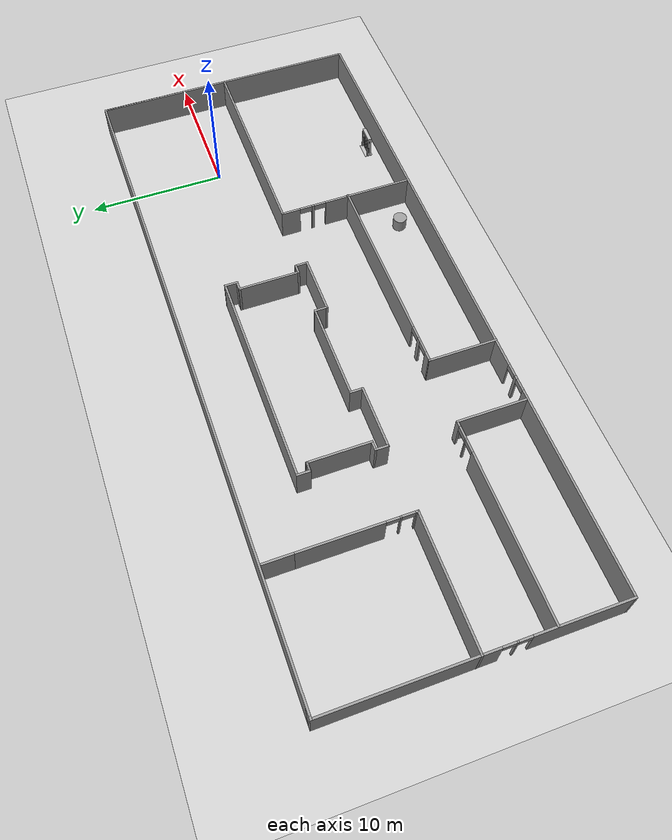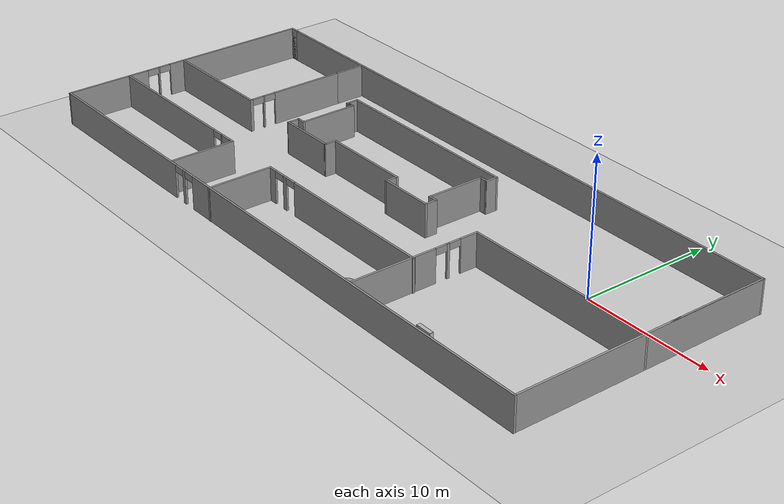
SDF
<sdf version="1.6">
 <world name="default">
  <model name="ground_plane">
   <static>1</static>
   <link name="link">
    <collision name="collision">
     <geometry><plane><normal>0 0 1</normal><size>100 100</size></plane></geometry>
     <surface><friction><ode><mu>100</mu><mu2>50</mu2></ode></friction></surface>
    </collision>
    <visual name="visual">
     <cast_shadows>0</cast_shadows>
     <geometry><plane><normal>0 0 1</normal><size>100 100</size></plane></geometry>
     <material>
      <script><uri>file://media/materials/scripts/gazebo.material</uri><name>Gazebo/Grey</name></script>
     </material>
    </visual>
   </link>
  </model>
  <model name="unit_cylinder_0">
   <pose>-9.3103 -11.4696 0.499993 -3e-06 0 0</pose>
   <link name="link">
    <inertial>
     <mass>1</mass>
     <inertia><ixx>0.145833</ixx><ixy>0</ixy><ixz>0</ixz><iyy>0.145833</iyy><iyz>0</iyz><izz>0.125</izz></inertia>
    </inertial>
    <collision name="collision">
     <geometry><cylinder><radius>0.5</radius><length>1</length></cylinder></geometry>
    </collision>
    <visual name="visual">
     <geometry><cylinder><radius>0.5</radius><length>1</length></cylinder></geometry>
     <material>
      <script><name>Gazebo/Grey</name><uri>file://media/materials/scripts/gazebo.material</uri></script>
     </material>
    </visual>
   </link>
  </model>
  <model name="frc2016_portcullis_0">
   <link name="base">
    <inertial>
     <mass>50</mass>
     <pose>0 0 1.02941 0 -0 0</pose>
     <inertia><ixx>3.81711</ixx><ixy>0</ixy><ixz>0</ixz><iyy>4.87698</iyy><iyz>0</iyz><izz>1.6283</izz></inertia>
    </inertial>
    <visual name="platform">
     <pose>0 0 0.07284 0 -0 0</pose>
     <geometry><box><size>1.27 0.5842 0.003175</size></box></geometry>
    </visual>
    <collision name="platform">
     <pose>0 0 0.07284 0 -0 0</pose>
     <geometry><box><size>1.27 0.5842 0.003175</size></box></geometry>
    </collision>
    <visual name="left_column">
     <pose>0.59284 0 0.99042 0 -0 0</pose>
     <geometry><box><size>0.08375 0.28575 1.83198</size></box></geometry>
    </visual>
    <collision name="left_column">
     <pose>0.59284 0 0.99042 0 -0 0</pose>
     <geometry><box><size>0.08375 0.28575 1.83198</size></box></geometry>
    </collision>
    <visual name="right_column">
     <pose>-0.57759 0 0.99042 0 -0 0</pose>
     <geometry><box><size>0.08375 0.28575 1.83198</size></box></geometry>
    </visual>
    <collision name="right_column">
     <pose>-0.57759 0 0.99042 0 -0 0</pose>
     <geometry><box><size>0.08375 0.28575 1.83198</size></box></geometry>
    </collision>
    <visual name="top">
     <pose>-0.00034 0 1.77722 0 -0 0</pose>
     <geometry><box><size>1.22962 0.28575 0.26657</size></box></geometry>
    </visual>
    <collision name="top">
     <pose>-0.00034 0 1.77722 0 -0 0</pose>
     <geometry><box><size>1.22962 0.28575 0.26657</size></box></geometry>
    </collision>
    <visual name="castor1">
     <pose>-0.45651 -0.16234 0.03272 0 -0 0</pose>
     <geometry><sphere><radius>0.03272</radius></sphere></geometry>
    </visual>
    <collision name="castor1">
     <pose>-0.45651 -0.16234 0.03272 0 -0 0</pose>
     <geometry><sphere><radius>0.03272</radius></sphere></geometry>
    </collision>
    <visual name="castor2">
     <pose>-0.27883 0.21836 0.03272 0 -0 0</pose>
     <geometry><sphere><radius>0.03272</radius></sphere></geometry>
    </visual>
    <collision name="castor2">
     <pose>-0.27883 0.21836 0.03272 0 -0 0</pose>
     <geometry><sphere><radius>0.03272</radius></sphere></geometry>
    </collision>
    <visual name="castor3">
     <pose>0.28083 0.21906 0.03272 0 -0 0</pose>
     <geometry><sphere><radius>0.03272</radius></sphere></geometry>
    </visual>
    <collision name="castor3">
     <pose>0.28083 0.21906 0.03272 0 -0 0</pose>
     <geometry><sphere><radius>0.03272</radius></sphere></geometry>
    </collision>
    <visual name="castor4">
     <pose>0.45871 -0.16186 0.03272 0 -0 0</pose>
     <geometry><sphere><radius>0.03272</radius></sphere></geometry>
    </visual>
    <collision name="castor4">
     <pose>0.45871 -0.16186 0.03272 0 -0 0</pose>
     <geometry><sphere><radius>0.03272</radius></sphere></geometry>
    </collision>
   </link>
   <link name="gate">
    <pose>-0.0287 0.02885 0.93327 0 -0 0</pose>
    <inertial>
     <mass>2</mass>
     <inertia><ixx>3.81711</ixx><ixy>0</ixy><ixz>0</ixz><iyy>4.87698</iyy><iyz>0</iyz><izz>1.6283</izz></inertia>
    </inertial>
    <collision name="collision"><geometry><box><size>1.1938 0.02496 1.45732</size></box></geometry></collision>
    <visual name="horz_1">
     <pose>0 0 -0.70326 0 -0 0</pose>
     <geometry><box><size>1.1938 0.02496 0.0508</size></box></geometry>
     <material><ambient>0.4 0.4 0.4 1</ambient><diffuse>0.4 0.4 0.4 1</diffuse></material>
    </visual>
    <visual name="horz_2">
     <pose>0 0 -0.44926 0 -0 0</pose>
     <geometry><box><size>1.1938 0.02496 0.0508</size></box></geometry>
     <material><ambient>0.4 0.4 0.4 1</ambient><diffuse>0.4 0.4 0.4 1</diffuse></material>
    </visual>
    <visual name="horz_3">
     <pose>0 0 -0.14517 0 -0 0</pose>
     <geometry><box><size>1.1938 0.02496 0.0508</size></box></geometry>
     <material><ambient>0.4 0.4 0.4 1</ambient><diffuse>0.4 0.4 0.4 1</diffuse></material>
    </visual>
    <visual name="horz_4">
     <pose>0 0 0.16034 0 -0 0</pose>
     <geometry><box><size>1.1938 0.02496 0.0508</size></box></geometry>
     <material><ambient>0.4 0.4 0.4 1</ambient><diffuse>0.4 0.4 0.4 1</diffuse></material>
    </visual>
    <visual name="horz_5">
     <pose>0 0 0.46514 0 -0 0</pose>
     <geometry><box><size>1.1938 0.02496 0.0508</size></box></geometry>
     <material><ambient>0.4 0.4 0.4 1</ambient><diffuse>0.4 0.4 0.4 1</diffuse></material>
    </visual>
    <visual name="horz_6">
     <pose>0 0 0.72994 0 -0 0</pose>
     <geometry><box><size>1.1938 0.02496 0.0508</size></box></geometry>
     <material><ambient>0.4 0.4 0.4 1</ambient><diffuse>0.4 0.4 0.4 1</diffuse></material>
    </visual>
    <visual name="vert_1">
     <pose>-0.58448 0 0 0 -0 0</pose>
     <geometry><box><size>0.02495 0.02496 1.45732</size></box></geometry>
     <material><ambient>0.4 0.4 0.4 1</ambient><diffuse>0.4 0.4 0.4 1</diffuse></material>
    </visual>
    <visual name="vert_2">
     <pose>-0.38128 0 0 0 -0 0</pose>
     <geometry><box><size>0.0508 0.02496 1.45732</size></box></geometry>
     <material><ambient>0.4 0.4 0.4 1</ambient><diffuse>0.4 0.4 0.4 1</diffuse></material>
    </visual>
    <visual name="vert_3">
     <pose>-0.12728 0 0 0 -0 0</pose>
     <geometry><box><size>0.0508 0.02496 1.45732</size></box></geometry>
     <material><ambient>0.4 0.4 0.4 1</ambient><diffuse>0.4 0.4 0.4 1</diffuse></material>
    </visual>
    <visual name="vert_4">
     <pose>0.12672 0 0 0 -0 0</pose>
     <geometry><box><size>0.0508 0.02496 1.45732</size></box></geometry>
     <material><ambient>0.4 0.4 0.4 1</ambient><diffuse>0.4 0.4 0.4 1</diffuse></material>
    </visual>
    <visual name="vert_5">
     <pose>0.38072 0 0 0 -0 0</pose>
     <geometry><box><size>0.0508 0.02496 1.45732</size></box></geometry>
     <material><ambient>0.4 0.4 0.4 1</ambient><diffuse>0.4 0.4 0.4 1</diffuse></material>
    </visual>
    <visual name="vert_6">
     <pose>0.58392 0 0 0 -0 0</pose>
     <geometry><box><size>0.02495 0.02496 1.45732</size></box></geometry>
     <material><ambient>0.4 0.4 0.4 1</ambient><diffuse>0.4 0.4 0.4 1</diffuse></material>
    </visual>
   </link>
   <joint name="joint" type="prismatic">
    <parent>base</parent>
    <child>gate</child>
    <axis>
     <xyz>0 0 1</xyz>
     <limit><lower>0</lower><upper>1</upper></limit>
     <use_parent_model_frame>0</use_parent_model_frame>
     <dynamics><spring_reference>0</spring_reference><spring_stiffness>0</spring_stiffness></dynamics>
    </axis>
   </joint>
   <pose>-1.19782 -11.9336 1e-06 4e-06 -2e-06 -0.01745</pose>
  </model>
  <model name="build1_3">
   <pose>-16.7865 -2.96586 0 0 -0 0</pose>
   <link name="Wall_0">
    <collision name="Wall_0_Collision">
     <geometry><box><size>48.75 0.15 2.5</size></box></geometry>
     <pose>0 0 1.25 0 -0 0</pose>
    </collision>
    <visual name="Wall_0_Visual">
     <pose>0 0 1.25 0 -0 0</pose>
     <geometry><box><size>48.75 0.15 2.5</size></box></geometry>
     <material>
      <script><uri>file://media/materials/scripts/gazebo.material</uri><name>Gazebo/Grey</name></script>
      <ambient>1 1 1 1</ambient>
     </material>
    </visual>
    <pose>0.128151 9.93761 0 0 -0 0</pose>
   </link>
   <link name="Wall_10">
    <collision name="Wall_10_Collision">
     <geometry><box><size>0.75 0.15 2.5</size></box></geometry>
     <pose>0 0 1.25 0 -0 0</pose>
    </collision>
    <visual name="Wall_10_Visual">
     <pose>0 0 1.25 0 -0 0</pose>
     <geometry><box><size>0.75 0.15 2.5</size></box></geometry>
     <material>
      <script><uri>file://media/materials/scripts/gazebo.material</uri><name>Gazebo/Grey</name></script>
      <ambient>1 1 1 1</ambient>
     </material>
    </visual>
    <pose>-24.1218 9.93761 0 0 -0 0</pose>
   </link>
   <link name="Wall_101">
    <collision name="Wall_101_Collision">
     <geometry><box><size>10 0.15 2.5</size></box></geometry>
     <pose>0 0 1.25 0 -0 0</pose>
    </collision>
    <visual name="Wall_101_Visual">
     <pose>0 0 1.25 0 -0 0</pose>
     <geometry><box><size>10 0.15 2.5</size></box></geometry>
     <material>
      <script><uri>file://media/materials/scripts/gazebo.material</uri><name>Gazebo/Grey</name></script>
      <ambient>1 1 1 1</ambient>
     </material>
    </visual>
    <pose>24.4281 5.01261 0 0 0 -1.5708</pose>
   </link>
   <link name="Wall_102">
    <collision name="Wall_102_Collision">
     <geometry><box><size>15 0.15 2.5</size></box></geometry>
     <pose>0 0 1.25 0 -0 0</pose>
    </collision>
    <visual name="Wall_102_Visual">
     <pose>0 0 1.25 0 -0 0</pose>
     <geometry><box><size>15 0.15 2.5</size></box></geometry>
     <material>
      <script><uri>file://media/materials/scripts/gazebo.material</uri><name>Gazebo/Grey</name></script>
      <ambient>1 1 1 1</ambient>
     </material>
    </visual>
    <pose>17.0032 0.087612 0 0 -0 3.14159</pose>
   </link>
   <link name="Wall_103">
    <pose>9.57815 -2.46239 0 0 0 -1.5708</pose>
    <visual name="Wall_103_Visual_0">
     <pose>-1.90662 0 1.25 0 -0 0</pose>
     <geometry><box><size>1.43676 0.15 2.5</size></box></geometry>
     <material>
      <script><uri>file://media/materials/scripts/gazebo.material</uri><name>Gazebo/Grey</name></script>
      <ambient>1 1 1 1</ambient>
     </material>
    </visual>
    <collision name="Wall_103_Collision_0">
     <geometry><box><size>1.43676 0.15 2.5</size></box></geometry>
     <pose>-1.90662 0 1.25 0 -0 0</pose>
    </collision>
    <visual name="Wall_103_Visual_1">
     <pose>-0.188989 0 1.25 0 -0 0</pose>
     <geometry><box><size>0.198503 0.15 2.5</size></box></geometry>
     <material>
      <script><uri>file://media/materials/scripts/gazebo.material</uri><name>Gazebo/Grey</name></script>
      <ambient>1 1 1 1</ambient>
     </material>
    </visual>
    <collision name="Wall_103_Collision_1">
     <geometry><box><size>0.198503 0.15 2.5</size></box></geometry>
     <pose>-0.188989 0 1.25 0 -0 0</pose>
    </collision>
    <visual name="Wall_103_Visual_2">
     <pose>1.71763 0 1.25 0 -0 0</pose>
     <geometry><box><size>1.81474 0.15 2.5</size></box></geometry>
     <material>
      <script><uri>file://media/materials/scripts/gazebo.material</uri><name>Gazebo/Grey</name></script>
      <ambient>1 1 1 1</ambient>
     </material>
    </visual>
    <collision name="Wall_103_Collision_2">
     <geometry><box><size>1.81474 0.15 2.5</size></box></geometry>
     <pose>1.71763 0 1.25 0 -0 0</pose>
    </collision>
    <visual name="Wall_103_Visual_3">
     <pose>-0.73824 0 2.25 0 -0 0</pose>
     <geometry><box><size>0.9 0.15 0.5</size></box></geometry>
     <material>
      <script><uri>file://media/materials/scripts/gazebo.material</uri><name>Gazebo/Grey</name></script>
      <ambient>1 1 1 1</ambient>
     </material>
    </visual>
    <collision name="Wall_103_Collision_3">
     <geometry><box><size>0.9 0.15 0.5</size></box></geometry>
     <pose>-0.73824 0 2.25 0 -0 0</pose>
    </collision>
    <visual name="Wall_103_Visual_4">
     <pose>0.360263 0 2.25 0 -0 0</pose>
     <geometry><box><size>0.9 0.15 0.5</size></box></geometry>
     <material>
      <script><uri>file://media/materials/scripts/gazebo.material</uri><name>Gazebo/Grey</name></script>
      <ambient>1 1 1 1</ambient>
     </material>
    </visual>
    <collision name="Wall_103_Collision_4">
     <geometry><box><size>0.9 0.15 0.5</size></box></geometry>
     <pose>0.360263 0 2.25 0 -0 0</pose>
    </collision>
   </link>
   <link name="Wall_105">
    <pose>1.96209 -5.08761 0 0 -0 0</pose>
    <visual name="Wall_105_Visual_0">
     <pose>-7.37124 0 1.25 0 -0 0</pose>
     <geometry><box><size>0.757518 0.15 2.5</size></box></geometry>
     <material>
      <script><uri>file://media/materials/scripts/gazebo.material</uri><name>Gazebo/Grey</name></script>
      <ambient>1 1 1 1</ambient>
     </material>
    </visual>
    <collision name="Wall_105_Collision_0">
     <geometry><box><size>0.757518 0.15 2.5</size></box></geometry>
     <pose>-7.37124 0 1.25 0 -0 0</pose>
    </collision>
    <visual name="Wall_105_Visual_1">
     <pose>-5.91186 0 1.25 0 -0 0</pose>
     <geometry><box><size>0.361245 0.15 2.5</size></box></geometry>
     <material>
      <script><uri>file://media/materials/scripts/gazebo.material</uri><name>Gazebo/Grey</name></script>
      <ambient>1 1 1 1</ambient>
     </material>
    </visual>
    <collision name="Wall_105_Collision_1">
     <geometry><box><size>0.361245 0.15 2.5</size></box></geometry>
     <pose>-5.91186 0 1.25 0 -0 0</pose>
    </collision>
    <visual name="Wall_105_Visual_2">
     <pose>1.45938 0 1.25 0 -0 0</pose>
     <geometry><box><size>12.5812 0.15 2.5</size></box></geometry>
     <material>
      <script><uri>file://media/materials/scripts/gazebo.material</uri><name>Gazebo/Grey</name></script>
      <ambient>1 1 1 1</ambient>
     </material>
    </visual>
    <collision name="Wall_105_Collision_2">
     <geometry><box><size>12.5812 0.15 2.5</size></box></geometry>
     <pose>1.45938 0 1.25 0 -0 0</pose>
    </collision>
    <visual name="Wall_105_Visual_3">
     <pose>-6.54248 0 2.25 0 -0 0</pose>
     <geometry><box><size>0.9 0.15 0.5</size></box></geometry>
     <material>
      <script><uri>file://media/materials/scripts/gazebo.material</uri><name>Gazebo/Grey</name></script>
      <ambient>1 1 1 1</ambient>
     </material>
    </visual>
    <collision name="Wall_105_Collision_3">
     <geometry><box><size>0.9 0.15 0.5</size></box></geometry>
     <pose>-6.54248 0 2.25 0 -0 0</pose>
    </collision>
    <visual name="Wall_105_Visual_4">
     <pose>-5.28124 0 2.25 0 -0 0</pose>
     <geometry><box><size>0.9 0.15 0.5</size></box></geometry>
     <material>
      <script><uri>file://media/materials/scripts/gazebo.material</uri><name>Gazebo/Grey</name></script>
      <ambient>1 1 1 1</ambient>
     </material>
    </visual>
    <collision name="Wall_105_Collision_4">
     <geometry><box><size>0.9 0.15 0.5</size></box></geometry>
     <pose>-5.28124 0 2.25 0 -0 0</pose>
    </collision>
   </link>
   <link name="Wall_14">
    <collision name="Wall_14_Collision">
     <geometry><box><size>9.25 0.15 2.5</size></box></geometry>
     <pose>0 0 1.25 0 -0 0</pose>
    </collision>
    <visual name="Wall_14_Visual">
     <pose>0 0 1.25 0 -0 0</pose>
     <geometry><box><size>9.25 0.15 2.5</size></box></geometry>
     <material>
      <script><uri>file://media/materials/scripts/gazebo.material</uri><name>Gazebo/Grey</name></script>
      <ambient>1 1 1 1</ambient>
     </material>
    </visual>
    <pose>-19.8782 -0.176763 0 0 -0 3.14159</pose>
   </link>
   <link name="Wall_16">
    <pose>-15.3282 3.74824 0 0 -0 1.5708</pose>
    <visual name="Wall_16_Visual_0">
     <pose>-3.87767 0 1.25 0 -0 0</pose>
     <geometry><box><size>0.244662 0.15 2.5</size></box></geometry>
     <material>
      <script><uri>file://media/materials/scripts/gazebo.material</uri><name>Gazebo/Grey</name></script>
      <ambient>1 1 1 1</ambient>
     </material>
    </visual>
    <collision name="Wall_16_Collision_0">
     <geometry><box><size>0.244662 0.15 2.5</size></box></geometry>
     <pose>-3.87767 0 1.25 0 -0 0</pose>
    </collision>
    <visual name="Wall_16_Visual_1">
     <pose>-2.79773 0 1.25 0 -0 0</pose>
     <geometry><box><size>0.11521 0.15 2.5</size></box></geometry>
     <material>
      <script><uri>file://media/materials/scripts/gazebo.material</uri><name>Gazebo/Grey</name></script>
      <ambient>1 1 1 1</ambient>
     </material>
    </visual>
    <collision name="Wall_16_Collision_1">
     <geometry><box><size>0.11521 0.15 2.5</size></box></geometry>
     <pose>-2.79773 0 1.25 0 -0 0</pose>
    </collision>
    <visual name="Wall_16_Visual_2">
     <pose>1.07994 0 1.25 0 -0 0</pose>
     <geometry><box><size>5.84013 0.15 2.5</size></box></geometry>
     <material>
      <script><uri>file://media/materials/scripts/gazebo.material</uri><name>Gazebo/Grey</name></script>
      <ambient>1 1 1 1</ambient>
     </material>
    </visual>
    <collision name="Wall_16_Collision_2">
     <geometry><box><size>5.84013 0.15 2.5</size></box></geometry>
     <pose>1.07994 0 1.25 0 -0 0</pose>
    </collision>
    <visual name="Wall_16_Visual_3">
     <pose>-3.30534 0 2.25 0 -0 0</pose>
     <geometry><box><size>0.9 0.15 0.5</size></box></geometry>
     <material>
      <script><uri>file://media/materials/scripts/gazebo.material</uri><name>Gazebo/Grey</name></script>
      <ambient>1 1 1 1</ambient>
     </material>
    </visual>
    <collision name="Wall_16_Collision_3">
     <geometry><box><size>0.9 0.15 0.5</size></box></geometry>
     <pose>-3.30534 0 2.25 0 -0 0</pose>
    </collision>
    <visual name="Wall_16_Visual_4">
     <pose>-2.29013 0 2.25 0 -0 0</pose>
     <geometry><box><size>0.9 0.15 0.5</size></box></geometry>
     <material>
      <script><uri>file://media/materials/scripts/gazebo.material</uri><name>Gazebo/Grey</name></script>
      <ambient>1 1 1 1</ambient>
     </material>
    </visual>
    <collision name="Wall_16_Collision_4">
     <geometry><box><size>0.9 0.15 0.5</size></box></geometry>
     <pose>-2.29013 0 2.25 0 -0 0</pose>
    </collision>
   </link>
   <link name="Wall_19">
    <collision name="Wall_19_Collision">
     <geometry><box><size>2.25 0.15 2.5</size></box></geometry>
     <pose>0 0 1.25 0 -0 0</pose>
    </collision>
    <visual name="Wall_19_Visual">
     <pose>0 0 1.25 0 -0 0</pose>
     <geometry><box><size>2.25 0.15 2.5</size></box></geometry>
     <material>
      <script><uri>file://media/materials/scripts/gazebo.material</uri><name>Gazebo/Grey</name></script>
      <ambient>1 1 1 1</ambient>
     </material>
    </visual>
    <pose>-15.3282 8.72324 0 0 -0 1.5708</pose>
   </link>
   <link name="Wall_21">
    <pose>-17.4625 -4.93332 0 0 -0 0</pose>
    <visual name="Wall_21_Visual_0">
     <pose>-1.1775 0 1.25 0 -0 0</pose>
     <geometry><box><size>11.645 0.15 2.5</size></box></geometry>
     <material>
      <script><uri>file://media/materials/scripts/gazebo.material</uri><name>Gazebo/Grey</name></script>
      <ambient>1 1 1 1</ambient>
     </material>
    </visual>
    <collision name="Wall_21_Collision_0">
     <geometry><box><size>11.645 0.15 2.5</size></box></geometry>
     <pose>-1.1775 0 1.25 0 -0 0</pose>
    </collision>
    <visual name="Wall_21_Visual_1">
     <pose>5.6026 0 1.25 0 -0 0</pose>
     <geometry><box><size>0.115209 0.15 2.5</size></box></geometry>
     <material>
      <script><uri>file://media/materials/scripts/gazebo.material</uri><name>Gazebo/Grey</name></script>
      <ambient>1 1 1 1</ambient>
     </material>
    </visual>
    <collision name="Wall_21_Collision_1">
     <geometry><box><size>0.115209 0.15 2.5</size></box></geometry>
     <pose>5.6026 0 1.25 0 -0 0</pose>
    </collision>
    <visual name="Wall_21_Visual_2">
     <pose>6.7801 0 1.25 0 -0 0</pose>
     <geometry><box><size>0.439798 0.15 2.5</size></box></geometry>
     <material>
      <script><uri>file://media/materials/scripts/gazebo.material</uri><name>Gazebo/Grey</name></script>
      <ambient>1 1 1 1</ambient>
     </material>
    </visual>
    <collision name="Wall_21_Collision_2">
     <geometry><box><size>0.439798 0.15 2.5</size></box></geometry>
     <pose>6.7801 0 1.25 0 -0 0</pose>
    </collision>
    <visual name="Wall_21_Visual_3">
     <pose>5.09499 0 2.25 0 -0 0</pose>
     <geometry><box><size>0.9 0.15 0.5</size></box></geometry>
     <material>
      <script><uri>file://media/materials/scripts/gazebo.material</uri><name>Gazebo/Grey</name></script>
      <ambient>1 1 1 1</ambient>
     </material>
    </visual>
    <collision name="Wall_21_Collision_3">
     <geometry><box><size>0.9 0.15 0.5</size></box></geometry>
     <pose>5.09499 0 2.25 0 -0 0</pose>
    </collision>
    <visual name="Wall_21_Visual_4">
     <pose>6.1102 0 2.25 0 -0 0</pose>
     <geometry><box><size>0.9 0.15 0.5</size></box></geometry>
     <material>
      <script><uri>file://media/materials/scripts/gazebo.material</uri><name>Gazebo/Grey</name></script>
      <ambient>1 1 1 1</ambient>
     </material>
    </visual>
    <collision name="Wall_21_Collision_4">
     <geometry><box><size>0.9 0.15 0.5</size></box></geometry>
     <pose>6.1102 0 2.25 0 -0 0</pose>
    </collision>
   </link>
   <link name="Wall_22">
    <collision name="Wall_22_Collision">
     <geometry><box><size>5 0.15 2.5</size></box></geometry>
     <pose>0 0 1.25 0 -0 0</pose>
    </collision>
    <visual name="Wall_22_Visual">
     <pose>0 0 1.25 0 -0 0</pose>
     <geometry><box><size>5 0.15 2.5</size></box></geometry>
     <material>
      <script><uri>file://media/materials/scripts/gazebo.material</uri><name>Gazebo/Grey</name></script>
      <ambient>1 1 1 1</ambient>
     </material>
    </visual>
    <pose>-10.5375 -7.35832 0 0 0 -1.5708</pose>
   </link>
   <link name="Wall_24">
    <collision name="Wall_24_Collision">
     <geometry><box><size>5 0.15 2.5</size></box></geometry>
     <pose>0 0 1.25 0 -0 0</pose>
    </collision>
    <visual name="Wall_24_Visual">
     <pose>0 0 1.25 0 -0 0</pose>
     <geometry><box><size>5 0.15 2.5</size></box></geometry>
     <material>
      <script><uri>file://media/materials/scripts/gazebo.material</uri><name>Gazebo/Grey</name></script>
      <ambient>1 1 1 1</ambient>
     </material>
    </visual>
    <pose>-5.71291 -7.51261 0 0 -0 1.5708</pose>
   </link>
   <link name="Wall_26">
    <collision name="Wall_26_Collision">
     <geometry><box><size>5 0.15 2.5</size></box></geometry>
     <pose>0 0 1.25 0 -0 0</pose>
    </collision>
    <visual name="Wall_26_Visual">
     <pose>0 0 1.25 0 -0 0</pose>
     <geometry><box><size>5 0.15 2.5</size></box></geometry>
     <material>
      <script><uri>file://media/materials/scripts/gazebo.material</uri><name>Gazebo/Grey</name></script>
      <ambient>1 1 1 1</ambient>
     </material>
    </visual>
    <pose>9.57927 -7.43124 0 0 0 -1.5708</pose>
   </link>
   <link name="Wall_69">
    <collision name="Wall_69_Collision">
     <geometry><box><size>4.5 0.15 2.5</size></box></geometry>
     <pose>0 0 1.25 0 -0 0</pose>
    </collision>
    <visual name="Wall_69_Visual">
     <pose>0 0 1.25 0 -0 0</pose>
     <geometry><box><size>4.5 0.15 2.5</size></box></geometry>
     <material>
      <script><uri>file://media/materials/scripts/gazebo.material</uri><name>Gazebo/Grey</name></script>
      <ambient>1 1 1 1</ambient>
     </material>
    </visual>
    <pose>-8.40817 -0.110852 0 0 -0 0</pose>
   </link>
   <link name="Wall_7">
    <collision name="Wall_7_Collision">
     <geometry><box><size>20 0.15 2.5</size></box></geometry>
     <pose>0 0 1.25 0 -0 0</pose>
    </collision>
    <visual name="Wall_7_Visual">
     <pose>0 0 1.25 0 -0 0</pose>
     <geometry><box><size>20 0.15 2.5</size></box></geometry>
     <material>
      <script><uri>file://media/materials/scripts/gazebo.material</uri><name>Gazebo/Grey</name></script>
      <ambient>1 1 1 1</ambient>
     </material>
    </visual>
    <pose>24.4281 0.012612 0 0 0 -1.5708</pose>
   </link>
   <link name="Wall_70">
    <collision name="Wall_70_Collision">
     <geometry><box><size>1 0.15 2.5</size></box></geometry>
     <pose>0 0 1.25 0 -0 0</pose>
    </collision>
    <visual name="Wall_70_Visual">
     <pose>0 0 1.25 0 -0 0</pose>
     <geometry><box><size>1 0.15 2.5</size></box></geometry>
     <material>
      <script><uri>file://media/materials/scripts/gazebo.material</uri><name>Gazebo/Grey</name></script>
      <ambient>1 1 1 1</ambient>
     </material>
    </visual>
    <pose>-6.23316 0.314148 0 0 -0 1.5708</pose>
   </link>
   <link name="Wall_78">
    <collision name="Wall_78_Collision">
     <geometry><box><size>0.75 0.15 2.5</size></box></geometry>
     <pose>0 0 1.25 0 -0 0</pose>
    </collision>
    <visual name="Wall_78_Visual">
     <pose>0 0 1.25 0 -0 0</pose>
     <geometry><box><size>0.75 0.15 2.5</size></box></geometry>
     <material>
      <script><uri>file://media/materials/scripts/gazebo.material</uri><name>Gazebo/Grey</name></script>
      <ambient>1 1 1 1</ambient>
     </material>
    </visual>
    <pose>4.41683 0.739148 0 0 -0 3.14159</pose>
   </link>
   <link name="Wall_79">
    <collision name="Wall_79_Collision">
     <geometry><box><size>4.5 0.15 2.5</size></box></geometry>
     <pose>0 0 1.25 0 -0 0</pose>
    </collision>
    <visual name="Wall_79_Visual">
     <pose>0 0 1.25 0 -0 0</pose>
     <geometry><box><size>4.5 0.15 2.5</size></box></geometry>
     <material>
      <script><uri>file://media/materials/scripts/gazebo.material</uri><name>Gazebo/Grey</name></script>
      <ambient>1 1 1 1</ambient>
     </material>
    </visual>
    <pose>4.11684 2.91415 0 0 -0 1.5708</pose>
   </link>
   <link name="Wall_8">
    <pose>0.003151 -9.91239 0 0 -0 3.14159</pose>
    <visual name="Wall_8_Visual_0">
     <pose>-8.35572 0 1.25 0 -0 0</pose>
     <geometry><box><size>32.2886 0.15 2.5</size></box></geometry>
     <material>
      <script><uri>file://media/materials/scripts/gazebo.material</uri><name>Gazebo/Grey</name></script>
      <ambient>1 1 1 1</ambient>
     </material>
    </visual>
    <collision name="Wall_8_Collision_0">
     <geometry><box><size>32.2886 0.15 2.5</size></box></geometry>
     <pose>-8.35572 0 1.25 0 -0 0</pose>
    </collision>
    <visual name="Wall_8_Visual_1">
     <pose>8.82849 0 1.25 0 -0 0</pose>
     <geometry><box><size>0.279873 0.15 2.5</size></box></geometry>
     <material>
      <script><uri>file://media/materials/scripts/gazebo.material</uri><name>Gazebo/Grey</name></script>
      <ambient>1 1 1 1</ambient>
     </material>
    </visual>
    <collision name="Wall_8_Collision_1">
     <geometry><box><size>0.279873 0.15 2.5</size></box></geometry>
     <pose>8.82849 0 1.25 0 -0 0</pose>
    </collision>
    <visual name="Wall_8_Visual_2">
     <pose>17.1842 0 1.25 0 -0 0</pose>
     <geometry><box><size>14.6316 0.15 2.5</size></box></geometry>
     <material>
      <script><uri>file://media/materials/scripts/gazebo.material</uri><name>Gazebo/Grey</name></script>
      <ambient>1 1 1 1</ambient>
     </material>
    </visual>
    <collision name="Wall_8_Collision_2">
     <geometry><box><size>14.6316 0.15 2.5</size></box></geometry>
     <pose>17.1842 0 1.25 0 -0 0</pose>
    </collision>
    <visual name="Wall_8_Visual_3">
     <pose>8.23855 0 2.25 0 -0 0</pose>
     <geometry><box><size>0.9 0.15 0.5</size></box></geometry>
     <material>
      <script><uri>file://media/materials/scripts/gazebo.material</uri><name>Gazebo/Grey</name></script>
      <ambient>1 1 1 1</ambient>
     </material>
    </visual>
    <collision name="Wall_8_Collision_3">
     <geometry><box><size>0.9 0.15 0.5</size></box></geometry>
     <pose>8.23855 0 2.25 0 -0 0</pose>
    </collision>
    <visual name="Wall_8_Visual_4">
     <pose>9.41842 0 2.25 0 -0 0</pose>
     <geometry><box><size>0.9 0.15 0.5</size></box></geometry>
     <material>
      <script><uri>file://media/materials/scripts/gazebo.material</uri><name>Gazebo/Grey</name></script>
      <ambient>1 1 1 1</ambient>
     </material>
    </visual>
    <collision name="Wall_8_Collision_4">
     <geometry><box><size>0.9 0.15 0.5</size></box></geometry>
     <pose>9.41842 0 2.25 0 -0 0</pose>
    </collision>
   </link>
   <link name="Wall_80">
    <collision name="Wall_80_Collision">
     <geometry><box><size>0.75 0.15 2.5</size></box></geometry>
     <pose>0 0 1.25 0 -0 0</pose>
    </collision>
    <visual name="Wall_80_Visual">
     <pose>0 0 1.25 0 -0 0</pose>
     <geometry><box><size>0.75 0.15 2.5</size></box></geometry>
     <material>
      <script><uri>file://media/materials/scripts/gazebo.material</uri><name>Gazebo/Grey</name></script>
      <ambient>1 1 1 1</ambient>
     </material>
    </visual>
    <pose>4.41683 5.08915 0 0 -0 0</pose>
   </link>
   <link name="Wall_81">
    <collision name="Wall_81_Collision">
     <geometry><box><size>1 0.15 2.5</size></box></geometry>
     <pose>0 0 1.25 0 -0 0</pose>
    </collision>
    <visual name="Wall_81_Visual">
     <pose>0 0 1.25 0 -0 0</pose>
     <geometry><box><size>1 0.15 2.5</size></box></geometry>
     <material>
      <script><uri>file://media/materials/scripts/gazebo.material</uri><name>Gazebo/Grey</name></script>
      <ambient>1 1 1 1</ambient>
     </material>
    </visual>
    <pose>4.71683 5.51415 0 0 -0 1.5708</pose>
   </link>
   <link name="Wall_82">
    <collision name="Wall_82_Collision">
     <geometry><box><size>15.5 0.15 2.5</size></box></geometry>
     <pose>0 0 1.25 0 -0 0</pose>
    </collision>
    <visual name="Wall_82_Visual">
     <pose>0 0 1.25 0 -0 0</pose>
     <geometry><box><size>15.5 0.15 2.5</size></box></geometry>
     <material>
      <script><uri>file://media/materials/scripts/gazebo.material</uri><name>Gazebo/Grey</name></script>
      <ambient>1 1 1 1</ambient>
     </material>
    </visual>
    <pose>-2.95817 5.93915 0 0 -0 3.14159</pose>
   </link>
   <link name="Wall_84">
    <collision name="Wall_84_Collision">
     <geometry><box><size>1 0.15 2.5</size></box></geometry>
     <pose>0 0 1.25 0 -0 0</pose>
    </collision>
    <visual name="Wall_84_Visual">
     <pose>0 0 1.25 0 -0 0</pose>
     <geometry><box><size>1 0.15 2.5</size></box></geometry>
     <material>
      <script><uri>file://media/materials/scripts/gazebo.material</uri><name>Gazebo/Grey</name></script>
      <ambient>1 1 1 1</ambient>
     </material>
    </visual>
    <pose>-10.6332 5.51415 0 0 0 -1.5708</pose>
   </link>
   <link name="Wall_85">
    <collision name="Wall_85_Collision">
     <geometry><box><size>0.5 0.15 2.5</size></box></geometry>
     <pose>0 0 1.25 0 -0 0</pose>
    </collision>
    <visual name="Wall_85_Visual">
     <pose>0 0 1.25 0 -0 0</pose>
     <geometry><box><size>0.5 0.15 2.5</size></box></geometry>
     <material>
      <script><uri>file://media/materials/scripts/gazebo.material</uri><name>Gazebo/Grey</name></script>
      <ambient>1 1 1 1</ambient>
     </material>
    </visual>
    <pose>-10.4582 5.08915 0 0 -0 0</pose>
   </link>
   <link name="Wall_87">
    <collision name="Wall_87_Collision">
     <geometry><box><size>0.75 0.15 2.5</size></box></geometry>
     <pose>0 0 1.25 0 -0 0</pose>
    </collision>
    <visual name="Wall_87_Visual">
     <pose>0 0 1.25 0 -0 0</pose>
     <geometry><box><size>0.75 0.15 2.5</size></box></geometry>
     <material>
      <script><uri>file://media/materials/scripts/gazebo.material</uri><name>Gazebo/Grey</name></script>
      <ambient>1 1 1 1</ambient>
     </material>
    </visual>
    <pose>-10.3332 5.08915 0 0 -0 0</pose>
   </link>
   <link name="Wall_88">
    <collision name="Wall_88_Collision">
     <geometry><box><size>4.5 0.15 2.5</size></box></geometry>
     <pose>0 0 1.25 0 -0 0</pose>
    </collision>
    <visual name="Wall_88_Visual">
     <pose>0 0 1.25 0 -0 0</pose>
     <geometry><box><size>4.5 0.15 2.5</size></box></geometry>
     <material>
      <script><uri>file://media/materials/scripts/gazebo.material</uri><name>Gazebo/Grey</name></script>
      <ambient>1 1 1 1</ambient>
     </material>
    </visual>
    <pose>-10.0332 2.91415 0 0 0 -1.5708</pose>
   </link>
   <link name="Wall_89">
    <collision name="Wall_89_Collision">
     <geometry><box><size>0.75 0.15 2.5</size></box></geometry>
     <pose>0 0 1.25 0 -0 0</pose>
    </collision>
    <visual name="Wall_89_Visual">
     <pose>0 0 1.25 0 -0 0</pose>
     <geometry><box><size>0.75 0.15 2.5</size></box></geometry>
     <material>
      <script><uri>file://media/materials/scripts/gazebo.material</uri><name>Gazebo/Grey</name></script>
      <ambient>1 1 1 1</ambient>
     </material>
    </visual>
    <pose>-10.3332 0.739148 0 0 -0 3.14159</pose>
   </link>
   <link name="Wall_9">
    <pose>-24.4218 0.012612 0 0 -0 1.5708</pose>
    <visual name="Wall_9_Visual_0">
     <pose>-6.68083 0 1.25 0 -0 0</pose>
     <geometry><box><size>6.63833 0.15 2.5</size></box></geometry>
     <material>
      <script><uri>file://media/materials/scripts/gazebo.material</uri><name>Gazebo/Grey</name></script>
      <ambient>1 1 1 1</ambient>
     </material>
    </visual>
    <collision name="Wall_9_Collision_0">
     <geometry><box><size>6.63833 0.15 2.5</size></box></geometry>
     <pose>-6.68083 0 1.25 0 -0 0</pose>
    </collision>
    <visual name="Wall_9_Visual_1">
     <pose>-2.4031 0 1.25 0 -0 0</pose>
     <geometry><box><size>0.117133 0.15 2.5</size></box></geometry>
     <material>
      <script><uri>file://media/materials/scripts/gazebo.material</uri><name>Gazebo/Grey</name></script>
      <ambient>1 1 1 1</ambient>
     </material>
    </visual>
    <collision name="Wall_9_Collision_1">
     <geometry><box><size>0.117133 0.15 2.5</size></box></geometry>
     <pose>-2.4031 0 1.25 0 -0 0</pose>
    </collision>
    <visual name="Wall_9_Visual_2">
     <pose>4.27773 0 1.25 0 -0 0</pose>
     <geometry><box><size>11.4445 0.15 2.5</size></box></geometry>
     <material>
      <script><uri>file://media/materials/scripts/gazebo.material</uri><name>Gazebo/Grey</name></script>
      <ambient>1 1 1 1</ambient>
     </material>
    </visual>
    <collision name="Wall_9_Collision_2">
     <geometry><box><size>11.4445 0.15 2.5</size></box></geometry>
     <pose>4.27773 0 1.25 0 -0 0</pose>
    </collision>
    <visual name="Wall_9_Visual_3">
     <pose>-2.91167 0 2.25 0 -0 0</pose>
     <geometry><box><size>0.9 0.15 0.5</size></box></geometry>
     <material>
      <script><uri>file://media/materials/scripts/gazebo.material</uri><name>Gazebo/Grey</name></script>
      <ambient>1 1 1 1</ambient>
     </material>
    </visual>
    <collision name="Wall_9_Collision_3">
     <geometry><box><size>0.9 0.15 0.5</size></box></geometry>
     <pose>-2.91167 0 2.25 0 -0 0</pose>
    </collision>
    <visual name="Wall_9_Visual_4">
     <pose>-1.89453 0 2.25 0 -0 0</pose>
     <geometry><box><size>0.9 0.15 0.5</size></box></geometry>
     <material>
      <script><uri>file://media/materials/scripts/gazebo.material</uri><name>Gazebo/Grey</name></script>
      <ambient>1 1 1 1</ambient>
     </material>
    </visual>
    <collision name="Wall_9_Collision_4">
     <geometry><box><size>0.9 0.15 0.5</size></box></geometry>
     <pose>-1.89453 0 2.25 0 -0 0</pose>
    </collision>
   </link>
   <link name="Wall_92">
    <collision name="Wall_92_Collision">
     <geometry><box><size>1 0.15 2.5</size></box></geometry>
     <pose>0 0 1.25 0 -0 0</pose>
    </collision>
    <visual name="Wall_92_Visual">
     <pose>0 0 1.25 0 -0 0</pose>
     <geometry><box><size>1 0.15 2.5</size></box></geometry>
     <material>
      <script><uri>file://media/materials/scripts/gazebo.material</uri><name>Gazebo/Grey</name></script>
      <ambient>1 1 1 1</ambient>
     </material>
    </visual>
    <pose>-10.6332 0.314148 0 0 0 -1.5708</pose>
   </link>
   <link name="Wall_96">
    <collision name="Wall_96_Collision">
     <geometry><box><size>1 0.15 2.5</size></box></geometry>
     <pose>0 0 1.25 0 -0 0</pose>
    </collision>
    <visual name="Wall_96_Visual">
     <pose>0 0 1.25 0 -0 0</pose>
     <geometry><box><size>1 0.15 2.5</size></box></geometry>
     <material>
      <script><uri>file://media/materials/scripts/gazebo.material</uri><name>Gazebo/Grey</name></script>
      <ambient>1 1 1 1</ambient>
     </material>
    </visual>
    <pose>4.71683 0.314148 0 0 0 -1.5708</pose>
   </link>
   <link name="Wall_97">
    <collision name="Wall_97_Collision">
     <geometry><box><size>4.25 0.15 2.5</size></box></geometry>
     <pose>0 0 1.25 0 -0 0</pose>
    </collision>
    <visual name="Wall_97_Visual">
     <pose>0 0 1.25 0 -0 0</pose>
     <geometry><box><size>4.25 0.15 2.5</size></box></geometry>
     <material>
      <script><uri>file://media/materials/scripts/gazebo.material</uri><name>Gazebo/Grey</name></script>
      <ambient>1 1 1 1</ambient>
     </material>
    </visual>
    <pose>2.66683 -0.110852 0 0 -0 3.14159</pose>
   </link>
   <link name="Wall_98">
    <collision name="Wall_98_Collision">
     <geometry><box><size>1 0.15 2.5</size></box></geometry>
     <pose>0 0 1.25 0 -0 0</pose>
    </collision>
    <visual name="Wall_98_Visual">
     <pose>0 0 1.25 0 -0 0</pose>
     <geometry><box><size>1 0.15 2.5</size></box></geometry>
     <material>
      <script><uri>file://media/materials/scripts/gazebo.material</uri><name>Gazebo/Grey</name></script>
      <ambient>1 1 1 1</ambient>
     </material>
    </visual>
    <pose>0.616835 0.314148 0 0 -0 1.5708</pose>
   </link>
   <link name="Wall_99">
    <collision name="Wall_99_Collision">
     <geometry><box><size>7 0.15 2.5</size></box></geometry>
     <pose>0 0 1.25 0 -0 0</pose>
    </collision>
    <visual name="Wall_99_Visual">
     <pose>0 0 1.25 0 -0 0</pose>
     <geometry><box><size>7 0.15 2.5</size></box></geometry>
     <material>
      <script><uri>file://media/materials/scripts/gazebo.material</uri><name>Gazebo/Grey</name></script>
      <ambient>1 1 1 1</ambient>
     </material>
    </visual>
    <pose>-2.80816 0.739148 0 0 -0 3.14159</pose>
   </link>
   <static>1</static>
  </model>
 </world>
</sdf>
